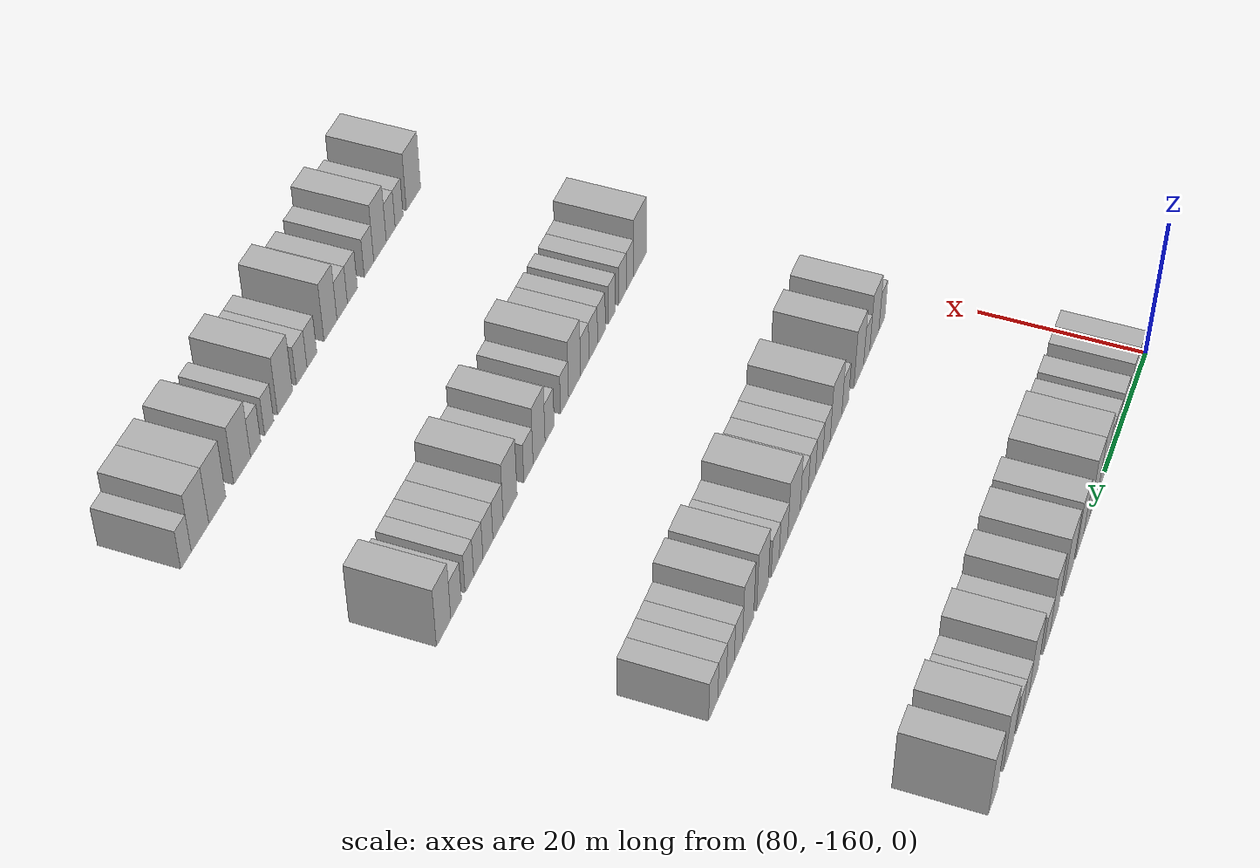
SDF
<sdf version="1.6">
 <world name="default">
  <model name="building_531">
   <static>1</static>
   <pose>85.0000 -155.9137 0 0.000000 0.000000 0.000000</pose>
   <link name="link">
    <pose>0 0 3.00 0 0 0</pose>
    <collision name="collision"><geometry><box><size>10.0000 2.8689 6.0000</size></box></geometry></collision>
    <visual name="visual">
     <cast_shadows>0</cast_shadows>
     <geometry><box><size>10.0000 2.8689 6.0000</size></box></geometry>
     <material>
      <script>
       <uri>model://HANNAS_wall/materials/scripts</uri>
       <uri>model://HANNAS_wall/materials/textures</uri>
       <name>vrc/HANNAS_wall</name>
      </script>
     </material>
    </visual>
   </link>
  </model>
  <model name="building_532">
   <static>1</static>
   <pose>85.0000 -153.0367 0 0.000000 0.000000 0.000000</pose>
   <link name="link">
    <pose>0 0 3.00 0 0 0</pose>
    <collision name="collision"><geometry><box><size>10.0000 2.8851 6.0000</size></box></geometry></collision>
    <visual name="visual">
     <cast_shadows>0</cast_shadows>
     <geometry><box><size>10.0000 2.8851 6.0000</size></box></geometry>
     <material>
      <script>
       <uri>model://HANNAS_wall/materials/scripts</uri>
       <uri>model://HANNAS_wall/materials/textures</uri>
       <name>vrc/HANNAS_wall</name>
      </script>
     </material>
    </visual>
   </link>
  </model>
  <model name="building_533">
   <static>1</static>
   <pose>85.0000 -148.1363 0 0.000000 0.000000 0.000000</pose>
   <link name="link">
    <pose>0 0 3.00 0 0 0</pose>
    <collision name="collision"><geometry><box><size>10.0000 2.9158 6.0000</size></box></geometry></collision>
    <visual name="visual">
     <cast_shadows>0</cast_shadows>
     <geometry><box><size>10.0000 2.9158 6.0000</size></box></geometry>
     <material>
      <script>
       <uri>model://HANNAS_wall/materials/scripts</uri>
       <uri>model://HANNAS_wall/materials/textures</uri>
       <name>vrc/HANNAS_wall</name>
      </script>
     </material>
    </visual>
   </link>
  </model>
  <model name="building_534">
   <static>1</static>
   <pose>85.0000 -144.2867 0 0.000000 0.000000 0.000000</pose>
   <link name="link">
    <pose>0 0 3.00 0 0 0</pose>
    <collision name="collision"><geometry><box><size>10.0000 2.7835 6.0000</size></box></geometry></collision>
    <visual name="visual">
     <cast_shadows>0</cast_shadows>
     <geometry><box><size>10.0000 2.7835 6.0000</size></box></geometry>
     <material>
      <script>
       <uri>model://HANNAS_wall/materials/scripts</uri>
       <uri>model://HANNAS_wall/materials/textures</uri>
       <name>vrc/HANNAS_wall</name>
      </script>
     </material>
    </visual>
   </link>
  </model>
  <model name="building_535">
   <static>1</static>
   <pose>85.0000 -141.6783 0 0.000000 0.000000 0.000000</pose>
   <link name="link">
    <pose>0 0 3.00 0 0 0</pose>
    <collision name="collision"><geometry><box><size>10.0000 2.4332 6.0000</size></box></geometry></collision>
    <visual name="visual">
     <cast_shadows>0</cast_shadows>
     <geometry><box><size>10.0000 2.4332 6.0000</size></box></geometry>
     <material>
      <script>
       <uri>model://HANNAS_wall/materials/scripts</uri>
       <uri>model://HANNAS_wall/materials/textures</uri>
       <name>vrc/HANNAS_wall</name>
      </script>
     </material>
    </visual>
   </link>
  </model>
  <model name="building_536">
   <static>1</static>
   <pose>85.0000 -138.5066 0 0.000000 0.000000 0.000000</pose>
   <link name="link">
    <pose>0 0 4.50 0 0 0</pose>
    <collision name="collision"><geometry><box><size>10.0000 3.9102 9.0000</size></box></geometry></collision>
    <visual name="visual">
     <cast_shadows>0</cast_shadows>
     <geometry><box><size>10.0000 3.9102 9.0000</size></box></geometry>
     <material>
      <script>
       <uri>model://HANNAS_wall/materials/scripts</uri>
       <uri>model://HANNAS_wall/materials/textures</uri>
       <name>vrc/HANNAS_wall</name>
      </script>
     </material>
    </visual>
   </link>
  </model>
  <model name="building_537">
   <static>1</static>
   <pose>85.0000 -134.6662 0 0.000000 0.000000 0.000000</pose>
   <link name="link">
    <pose>0 0 4.50 0 0 0</pose>
    <collision name="collision"><geometry><box><size>10.0000 3.7706 9.0000</size></box></geometry></collision>
    <visual name="visual">
     <cast_shadows>0</cast_shadows>
     <geometry><box><size>10.0000 3.7706 9.0000</size></box></geometry>
     <material>
      <script>
       <uri>model://HANNAS_wall/materials/scripts</uri>
       <uri>model://HANNAS_wall/materials/textures</uri>
       <name>vrc/HANNAS_wall</name>
      </script>
     </material>
    </visual>
   </link>
  </model>
  <model name="building_538">
   <static>1</static>
   <pose>85.0000 -131.3537 0 0.000000 0.000000 0.000000</pose>
   <link name="link">
    <pose>0 0 3.00 0 0 0</pose>
    <collision name="collision"><geometry><box><size>10.0000 2.8545 6.0000</size></box></geometry></collision>
    <visual name="visual">
     <cast_shadows>0</cast_shadows>
     <geometry><box><size>10.0000 2.8545 6.0000</size></box></geometry>
     <material>
      <script>
       <uri>model://HANNAS_wall/materials/scripts</uri>
       <uri>model://HANNAS_wall/materials/textures</uri>
       <name>vrc/HANNAS_wall</name>
      </script>
     </material>
    </visual>
   </link>
  </model>
  <model name="building_539">
   <static>1</static>
   <pose>85.0000 -128.1170 0 0.000000 0.000000 0.000000</pose>
   <link name="link">
    <pose>0 0 4.50 0 0 0</pose>
    <collision name="collision"><geometry><box><size>10.0000 3.6188 9.0000</size></box></geometry></collision>
    <visual name="visual">
     <cast_shadows>0</cast_shadows>
     <geometry><box><size>10.0000 3.6188 9.0000</size></box></geometry>
     <material>
      <script>
       <uri>model://HANNAS_wall/materials/scripts</uri>
       <uri>model://HANNAS_wall/materials/textures</uri>
       <name>vrc/HANNAS_wall</name>
      </script>
     </material>
    </visual>
   </link>
  </model>
  <model name="building_540">
   <static>1</static>
   <pose>85.0000 -123.0720 0 0.000000 0.000000 0.000000</pose>
   <link name="link">
    <pose>0 0 4.50 0 0 0</pose>
    <collision name="collision"><geometry><box><size>10.0000 4.4713 9.0000</size></box></geometry></collision>
    <visual name="visual">
     <cast_shadows>0</cast_shadows>
     <geometry><box><size>10.0000 4.4713 9.0000</size></box></geometry>
     <material>
      <script>
       <uri>model://HANNAS_wall/materials/scripts</uri>
       <uri>model://HANNAS_wall/materials/textures</uri>
       <name>vrc/HANNAS_wall</name>
      </script>
     </material>
    </visual>
   </link>
  </model>
  <model name="building_541">
   <static>1</static>
   <pose>85.0000 -116.9655 0 0.000000 0.000000 0.000000</pose>
   <link name="link">
    <pose>0 0 4.50 0 0 0</pose>
    <collision name="collision"><geometry><box><size>10.0000 3.7417 9.0000</size></box></geometry></collision>
    <visual name="visual">
     <cast_shadows>0</cast_shadows>
     <geometry><box><size>10.0000 3.7417 9.0000</size></box></geometry>
     <material>
      <script>
       <uri>model://HANNAS_wall/materials/scripts</uri>
       <uri>model://HANNAS_wall/materials/textures</uri>
       <name>vrc/HANNAS_wall</name>
      </script>
     </material>
    </visual>
   </link>
  </model>
  <model name="building_542">
   <static>1</static>
   <pose>85.0000 -113.6668 0 0.000000 0.000000 0.000000</pose>
   <link name="link">
    <pose>0 0 3.00 0 0 0</pose>
    <collision name="collision"><geometry><box><size>10.0000 2.8557 6.0000</size></box></geometry></collision>
    <visual name="visual">
     <cast_shadows>0</cast_shadows>
     <geometry><box><size>10.0000 2.8557 6.0000</size></box></geometry>
     <material>
      <script>
       <uri>model://HANNAS_wall/materials/scripts</uri>
       <uri>model://HANNAS_wall/materials/textures</uri>
       <name>vrc/HANNAS_wall</name>
      </script>
     </material>
    </visual>
   </link>
  </model>
  <model name="building_543">
   <static>1</static>
   <pose>85.0000 -108.2378 0 0.000000 0.000000 0.000000</pose>
   <link name="link">
    <pose>0 0 4.50 0 0 0</pose>
    <collision name="collision"><geometry><box><size>10.0000 4.0023 9.0000</size></box></geometry></collision>
    <visual name="visual">
     <cast_shadows>0</cast_shadows>
     <geometry><box><size>10.0000 4.0023 9.0000</size></box></geometry>
     <material>
      <script>
       <uri>model://HANNAS_wall/materials/scripts</uri>
       <uri>model://HANNAS_wall/materials/textures</uri>
       <name>vrc/HANNAS_wall</name>
      </script>
     </material>
    </visual>
   </link>
  </model>
  <model name="building_544">
   <static>1</static>
   <pose>85.0000 -104.9429 0 0.000000 0.000000 0.000000</pose>
   <link name="link">
    <pose>0 0 3.00 0 0 0</pose>
    <collision name="collision"><geometry><box><size>10.0000 2.5875 6.0000</size></box></geometry></collision>
    <visual name="visual">
     <cast_shadows>0</cast_shadows>
     <geometry><box><size>10.0000 2.5875 6.0000</size></box></geometry>
     <material>
      <script>
       <uri>model://HANNAS_wall/materials/scripts</uri>
       <uri>model://HANNAS_wall/materials/textures</uri>
       <name>vrc/HANNAS_wall</name>
      </script>
     </material>
    </visual>
   </link>
  </model>
  <model name="building_545">
   <static>1</static>
   <pose>85.0000 -102.4258 0 0.000000 0.000000 0.000000</pose>
   <link name="link">
    <pose>0 0 3.00 0 0 0</pose>
    <collision name="collision"><geometry><box><size>10.0000 2.4467 6.0000</size></box></geometry></collision>
    <visual name="visual">
     <cast_shadows>0</cast_shadows>
     <geometry><box><size>10.0000 2.4467 6.0000</size></box></geometry>
     <material>
      <script>
       <uri>model://HANNAS_wall/materials/scripts</uri>
       <uri>model://HANNAS_wall/materials/textures</uri>
       <name>vrc/HANNAS_wall</name>
      </script>
     </material>
    </visual>
   </link>
  </model>
  <model name="building_546">
   <static>1</static>
   <pose>85.0000 -98.1594 0 0.000000 0.000000 0.000000</pose>
   <link name="link">
    <pose>0 0 4.50 0 0 0</pose>
    <collision name="collision"><geometry><box><size>10.0000 4.0861 9.0000</size></box></geometry></collision>
    <visual name="visual">
     <cast_shadows>0</cast_shadows>
     <geometry><box><size>10.0000 4.0861 9.0000</size></box></geometry>
     <material>
      <script>
       <uri>model://HANNAS_wall/materials/scripts</uri>
       <uri>model://HANNAS_wall/materials/textures</uri>
       <name>vrc/HANNAS_wall</name>
      </script>
     </material>
    </visual>
   </link>
  </model>
  <model name="building_547">
   <static>1</static>
   <pose>85.0000 -92.2559 0 0.000000 0.000000 0.000000</pose>
   <link name="link">
    <pose>0 0 4.50 0 0 0</pose>
    <collision name="collision"><geometry><box><size>10.0000 3.7208 9.0000</size></box></geometry></collision>
    <visual name="visual">
     <cast_shadows>0</cast_shadows>
     <geometry><box><size>10.0000 3.7208 9.0000</size></box></geometry>
     <material>
      <script>
       <uri>model://HANNAS_wall/materials/scripts</uri>
       <uri>model://HANNAS_wall/materials/textures</uri>
       <name>vrc/HANNAS_wall</name>
      </script>
     </material>
    </visual>
   </link>
  </model>
  <model name="building_750">
   <static>1</static>
   <pose>115.0000 -154.0884 0 0.000000 0.000000 0.000000</pose>
   <link name="link">
    <pose>0 0 3.00 0 0 0</pose>
    <collision name="collision"><geometry><box><size>10.0000 2.4673 6.0000</size></box></geometry></collision>
    <visual name="visual">
     <cast_shadows>0</cast_shadows>
     <geometry><box><size>10.0000 2.4673 6.0000</size></box></geometry>
     <material>
      <script>
       <uri>model://HANNAS_wall/materials/scripts</uri>
       <uri>model://HANNAS_wall/materials/textures</uri>
       <name>vrc/HANNAS_wall</name>
      </script>
     </material>
    </visual>
   </link>
  </model>
  <model name="building_751">
   <static>1</static>
   <pose>115.0000 -151.0097 0 0.000000 0.000000 0.000000</pose>
   <link name="link">
    <pose>0 0 4.50 0 0 0</pose>
    <collision name="collision"><geometry><box><size>10.0000 3.6899 9.0000</size></box></geometry></collision>
    <visual name="visual">
     <cast_shadows>0</cast_shadows>
     <geometry><box><size>10.0000 3.6899 9.0000</size></box></geometry>
     <material>
      <script>
       <uri>model://HANNAS_wall/materials/scripts</uri>
       <uri>model://HANNAS_wall/materials/textures</uri>
       <name>vrc/HANNAS_wall</name>
      </script>
     </material>
    </visual>
   </link>
  </model>
  <model name="building_752">
   <static>1</static>
   <pose>115.0000 -147.9441 0 0.000000 0.000000 0.000000</pose>
   <link name="link">
    <pose>0 0 3.00 0 0 0</pose>
    <collision name="collision"><geometry><box><size>10.0000 2.4414 6.0000</size></box></geometry></collision>
    <visual name="visual">
     <cast_shadows>0</cast_shadows>
     <geometry><box><size>10.0000 2.4414 6.0000</size></box></geometry>
     <material>
      <script>
       <uri>model://HANNAS_wall/materials/scripts</uri>
       <uri>model://HANNAS_wall/materials/textures</uri>
       <name>vrc/HANNAS_wall</name>
      </script>
     </material>
    </visual>
   </link>
  </model>
  <model name="building_753">
   <static>1</static>
   <pose>115.0000 -144.8152 0 0.000000 0.000000 0.000000</pose>
   <link name="link">
    <pose>0 0 4.50 0 0 0</pose>
    <collision name="collision"><geometry><box><size>10.0000 3.8165 9.0000</size></box></geometry></collision>
    <visual name="visual">
     <cast_shadows>0</cast_shadows>
     <geometry><box><size>10.0000 3.8165 9.0000</size></box></geometry>
     <material>
      <script>
       <uri>model://HANNAS_wall/materials/scripts</uri>
       <uri>model://HANNAS_wall/materials/textures</uri>
       <name>vrc/HANNAS_wall</name>
      </script>
     </material>
    </visual>
   </link>
  </model>
  <model name="building_754">
   <static>1</static>
   <pose>115.0000 -139.5575 0 0.000000 0.000000 0.000000</pose>
   <link name="link">
    <pose>0 0 3.00 0 0 0</pose>
    <collision name="collision"><geometry><box><size>10.0000 2.6990 6.0000</size></box></geometry></collision>
    <visual name="visual">
     <cast_shadows>0</cast_shadows>
     <geometry><box><size>10.0000 2.6990 6.0000</size></box></geometry>
     <material>
      <script>
       <uri>model://HANNAS_wall/materials/scripts</uri>
       <uri>model://HANNAS_wall/materials/textures</uri>
       <name>vrc/HANNAS_wall</name>
      </script>
     </material>
    </visual>
   </link>
  </model>
  <model name="building_755">
   <static>1</static>
   <pose>115.0000 -135.9982 0 0.000000 0.000000 0.000000</pose>
   <link name="link">
    <pose>0 0 4.50 0 0 0</pose>
    <collision name="collision"><geometry><box><size>10.0000 4.4196 9.0000</size></box></geometry></collision>
    <visual name="visual">
     <cast_shadows>0</cast_shadows>
     <geometry><box><size>10.0000 4.4196 9.0000</size></box></geometry>
     <material>
      <script>
       <uri>model://HANNAS_wall/materials/scripts</uri>
       <uri>model://HANNAS_wall/materials/textures</uri>
       <name>vrc/HANNAS_wall</name>
      </script>
     </material>
    </visual>
   </link>
  </model>
  <model name="building_756">
   <static>1</static>
   <pose>115.0000 -132.4157 0 0.000000 0.000000 0.000000</pose>
   <link name="link">
    <pose>0 0 3.00 0 0 0</pose>
    <collision name="collision"><geometry><box><size>10.0000 2.7453 6.0000</size></box></geometry></collision>
    <visual name="visual">
     <cast_shadows>0</cast_shadows>
     <geometry><box><size>10.0000 2.7453 6.0000</size></box></geometry>
     <material>
      <script>
       <uri>model://HANNAS_wall/materials/scripts</uri>
       <uri>model://HANNAS_wall/materials/textures</uri>
       <name>vrc/HANNAS_wall</name>
      </script>
     </material>
    </visual>
   </link>
  </model>
  <model name="building_757">
   <static>1</static>
   <pose>115.0000 -129.6932 0 0.000000 0.000000 0.000000</pose>
   <link name="link">
    <pose>0 0 3.00 0 0 0</pose>
    <collision name="collision"><geometry><box><size>10.0000 2.6997 6.0000</size></box></geometry></collision>
    <visual name="visual">
     <cast_shadows>0</cast_shadows>
     <geometry><box><size>10.0000 2.6997 6.0000</size></box></geometry>
     <material>
      <script>
       <uri>model://HANNAS_wall/materials/scripts</uri>
       <uri>model://HANNAS_wall/materials/textures</uri>
       <name>vrc/HANNAS_wall</name>
      </script>
     </material>
    </visual>
   </link>
  </model>
  <model name="building_758">
   <static>1</static>
   <pose>115.0000 -127.0323 0 0.000000 0.000000 0.000000</pose>
   <link name="link">
    <pose>0 0 3.00 0 0 0</pose>
    <collision name="collision"><geometry><box><size>10.0000 2.6222 6.0000</size></box></geometry></collision>
    <visual name="visual">
     <cast_shadows>0</cast_shadows>
     <geometry><box><size>10.0000 2.6222 6.0000</size></box></geometry>
     <material>
      <script>
       <uri>model://HANNAS_wall/materials/scripts</uri>
       <uri>model://HANNAS_wall/materials/textures</uri>
       <name>vrc/HANNAS_wall</name>
      </script>
     </material>
    </visual>
   </link>
  </model>
  <model name="building_759">
   <static>1</static>
   <pose>115.0000 -124.2521 0 0.000000 0.000000 0.000000</pose>
   <link name="link">
    <pose>0 0 3.00 0 0 0</pose>
    <collision name="collision"><geometry><box><size>10.0000 2.9382 6.0000</size></box></geometry></collision>
    <visual name="visual">
     <cast_shadows>0</cast_shadows>
     <geometry><box><size>10.0000 2.9382 6.0000</size></box></geometry>
     <material>
      <script>
       <uri>model://HANNAS_wall/materials/scripts</uri>
       <uri>model://HANNAS_wall/materials/textures</uri>
       <name>vrc/HANNAS_wall</name>
      </script>
     </material>
    </visual>
   </link>
  </model>
  <model name="building_760">
   <static>1</static>
   <pose>115.0000 -120.5601 0 0.000000 0.000000 0.000000</pose>
   <link name="link">
    <pose>0 0 4.50 0 0 0</pose>
    <collision name="collision"><geometry><box><size>10.0000 4.4458 9.0000</size></box></geometry></collision>
    <visual name="visual">
     <cast_shadows>0</cast_shadows>
     <geometry><box><size>10.0000 4.4458 9.0000</size></box></geometry>
     <material>
      <script>
       <uri>model://HANNAS_wall/materials/scripts</uri>
       <uri>model://HANNAS_wall/materials/textures</uri>
       <name>vrc/HANNAS_wall</name>
      </script>
     </material>
    </visual>
   </link>
  </model>
  <model name="building_761">
   <static>1</static>
   <pose>115.0000 -116.8474 0 0.000000 0.000000 0.000000</pose>
   <link name="link">
    <pose>0 0 3.00 0 0 0</pose>
    <collision name="collision"><geometry><box><size>10.0000 2.9796 6.0000</size></box></geometry></collision>
    <visual name="visual">
     <cast_shadows>0</cast_shadows>
     <geometry><box><size>10.0000 2.9796 6.0000</size></box></geometry>
     <material>
      <script>
       <uri>model://HANNAS_wall/materials/scripts</uri>
       <uri>model://HANNAS_wall/materials/textures</uri>
       <name>vrc/HANNAS_wall</name>
      </script>
     </material>
    </visual>
   </link>
  </model>
  <model name="building_762">
   <static>1</static>
   <pose>115.0000 -113.9716 0 0.000000 0.000000 0.000000</pose>
   <link name="link">
    <pose>0 0 3.00 0 0 0</pose>
    <collision name="collision"><geometry><box><size>10.0000 2.7719 6.0000</size></box></geometry></collision>
    <visual name="visual">
     <cast_shadows>0</cast_shadows>
     <geometry><box><size>10.0000 2.7719 6.0000</size></box></geometry>
     <material>
      <script>
       <uri>model://HANNAS_wall/materials/scripts</uri>
       <uri>model://HANNAS_wall/materials/textures</uri>
       <name>vrc/HANNAS_wall</name>
      </script>
     </material>
    </visual>
   </link>
  </model>
  <model name="building_763">
   <static>1</static>
   <pose>115.0000 -109.6281 0 0.000000 0.000000 0.000000</pose>
   <link name="link">
    <pose>0 0 4.50 0 0 0</pose>
    <collision name="collision"><geometry><box><size>10.0000 3.9152 9.0000</size></box></geometry></collision>
    <visual name="visual">
     <cast_shadows>0</cast_shadows>
     <geometry><box><size>10.0000 3.9152 9.0000</size></box></geometry>
     <material>
      <script>
       <uri>model://HANNAS_wall/materials/scripts</uri>
       <uri>model://HANNAS_wall/materials/textures</uri>
       <name>vrc/HANNAS_wall</name>
      </script>
     </material>
    </visual>
   </link>
  </model>
  <model name="building_764">
   <static>1</static>
   <pose>115.0000 -104.8191 0 0.000000 0.000000 0.000000</pose>
   <link name="link">
    <pose>0 0 4.50 0 0 0</pose>
    <collision name="collision"><geometry><box><size>10.0000 3.7028 9.0000</size></box></geometry></collision>
    <visual name="visual">
     <cast_shadows>0</cast_shadows>
     <geometry><box><size>10.0000 3.7028 9.0000</size></box></geometry>
     <material>
      <script>
       <uri>model://HANNAS_wall/materials/scripts</uri>
       <uri>model://HANNAS_wall/materials/textures</uri>
       <name>vrc/HANNAS_wall</name>
      </script>
     </material>
    </visual>
   </link>
  </model>
  <model name="building_765">
   <static>1</static>
   <pose>115.0000 -101.6167 0 0.000000 0.000000 0.000000</pose>
   <link name="link">
    <pose>0 0 3.00 0 0 0</pose>
    <collision name="collision"><geometry><box><size>10.0000 2.7020 6.0000</size></box></geometry></collision>
    <visual name="visual">
     <cast_shadows>0</cast_shadows>
     <geometry><box><size>10.0000 2.7020 6.0000</size></box></geometry>
     <material>
      <script>
       <uri>model://HANNAS_wall/materials/scripts</uri>
       <uri>model://HANNAS_wall/materials/textures</uri>
       <name>vrc/HANNAS_wall</name>
      </script>
     </material>
    </visual>
   </link>
  </model>
  <model name="building_766">
   <static>1</static>
   <pose>115.0000 -98.9996 0 0.000000 0.000000 0.000000</pose>
   <link name="link">
    <pose>0 0 3.00 0 0 0</pose>
    <collision name="collision"><geometry><box><size>10.0000 2.5321 6.0000</size></box></geometry></collision>
    <visual name="visual">
     <cast_shadows>0</cast_shadows>
     <geometry><box><size>10.0000 2.5321 6.0000</size></box></geometry>
     <material>
      <script>
       <uri>model://HANNAS_wall/materials/scripts</uri>
       <uri>model://HANNAS_wall/materials/textures</uri>
       <name>vrc/HANNAS_wall</name>
      </script>
     </material>
    </visual>
   </link>
  </model>
  <model name="building_767">
   <static>1</static>
   <pose>115.0000 -96.3566 0 0.000000 0.000000 0.000000</pose>
   <link name="link">
    <pose>0 0 3.00 0 0 0</pose>
    <collision name="collision"><geometry><box><size>10.0000 2.7540 6.0000</size></box></geometry></collision>
    <visual name="visual">
     <cast_shadows>0</cast_shadows>
     <geometry><box><size>10.0000 2.7540 6.0000</size></box></geometry>
     <material>
      <script>
       <uri>model://HANNAS_wall/materials/scripts</uri>
       <uri>model://HANNAS_wall/materials/textures</uri>
       <name>vrc/HANNAS_wall</name>
      </script>
     </material>
    </visual>
   </link>
  </model>
  <model name="building_768">
   <static>1</static>
   <pose>115.0000 -93.5130 0 0.000000 0.000000 0.000000</pose>
   <link name="link">
    <pose>0 0 3.00 0 0 0</pose>
    <collision name="collision"><geometry><box><size>10.0000 2.9333 6.0000</size></box></geometry></collision>
    <visual name="visual">
     <cast_shadows>0</cast_shadows>
     <geometry><box><size>10.0000 2.9333 6.0000</size></box></geometry>
     <material>
      <script>
       <uri>model://HANNAS_wall/materials/scripts</uri>
       <uri>model://HANNAS_wall/materials/textures</uri>
       <name>vrc/HANNAS_wall</name>
      </script>
     </material>
    </visual>
   </link>
  </model>
  <model name="building_984">
   <static>1</static>
   <pose>145.0000 -154.0202 0 0.000000 0.000000 0.000000</pose>
   <link name="link">
    <pose>0 0 4.50 0 0 0</pose>
    <collision name="collision"><geometry><box><size>10.0000 4.4414 9.0000</size></box></geometry></collision>
    <visual name="visual">
     <cast_shadows>0</cast_shadows>
     <geometry><box><size>10.0000 4.4414 9.0000</size></box></geometry>
     <material>
      <script>
       <uri>model://HANNAS_wall/materials/scripts</uri>
       <uri>model://HANNAS_wall/materials/textures</uri>
       <name>vrc/HANNAS_wall</name>
      </script>
     </material>
    </visual>
   </link>
  </model>
  <model name="building_985">
   <static>1</static>
   <pose>145.0000 -150.5367 0 0.000000 0.000000 0.000000</pose>
   <link name="link">
    <pose>0 0 3.00 0 0 0</pose>
    <collision name="collision"><geometry><box><size>10.0000 2.5255 6.0000</size></box></geometry></collision>
    <visual name="visual">
     <cast_shadows>0</cast_shadows>
     <geometry><box><size>10.0000 2.5255 6.0000</size></box></geometry>
     <material>
      <script>
       <uri>model://HANNAS_wall/materials/scripts</uri>
       <uri>model://HANNAS_wall/materials/textures</uri>
       <name>vrc/HANNAS_wall</name>
      </script>
     </material>
    </visual>
   </link>
  </model>
  <model name="building_986">
   <static>1</static>
   <pose>145.0000 -147.9584 0 0.000000 0.000000 0.000000</pose>
   <link name="link">
    <pose>0 0 3.00 0 0 0</pose>
    <collision name="collision"><geometry><box><size>10.0000 2.6311 6.0000</size></box></geometry></collision>
    <visual name="visual">
     <cast_shadows>0</cast_shadows>
     <geometry><box><size>10.0000 2.6311 6.0000</size></box></geometry>
     <material>
      <script>
       <uri>model://HANNAS_wall/materials/scripts</uri>
       <uri>model://HANNAS_wall/materials/textures</uri>
       <name>vrc/HANNAS_wall</name>
      </script>
     </material>
    </visual>
   </link>
  </model>
  <model name="building_987">
   <static>1</static>
   <pose>145.0000 -144.4364 0 0.000000 0.000000 0.000000</pose>
   <link name="link">
    <pose>0 0 3.00 0 0 0</pose>
    <collision name="collision"><geometry><box><size>10.0000 2.4128 6.0000</size></box></geometry></collision>
    <visual name="visual">
     <cast_shadows>0</cast_shadows>
     <geometry><box><size>10.0000 2.4128 6.0000</size></box></geometry>
     <material>
      <script>
       <uri>model://HANNAS_wall/materials/scripts</uri>
       <uri>model://HANNAS_wall/materials/textures</uri>
       <name>vrc/HANNAS_wall</name>
      </script>
     </material>
    </visual>
   </link>
  </model>
  <model name="building_988">
   <static>1</static>
   <pose>145.0000 -140.9374 0 0.000000 0.000000 0.000000</pose>
   <link name="link">
    <pose>0 0 3.00 0 0 0</pose>
    <collision name="collision"><geometry><box><size>10.0000 2.5854 6.0000</size></box></geometry></collision>
    <visual name="visual">
     <cast_shadows>0</cast_shadows>
     <geometry><box><size>10.0000 2.5854 6.0000</size></box></geometry>
     <material>
      <script>
       <uri>model://HANNAS_wall/materials/scripts</uri>
       <uri>model://HANNAS_wall/materials/textures</uri>
       <name>vrc/HANNAS_wall</name>
      </script>
     </material>
    </visual>
   </link>
  </model>
  <model name="building_989">
   <static>1</static>
   <pose>145.0000 -138.2459 0 0.000000 0.000000 0.000000</pose>
   <link name="link">
    <pose>0 0 3.00 0 0 0</pose>
    <collision name="collision"><geometry><box><size>10.0000 2.7976 6.0000</size></box></geometry></collision>
    <visual name="visual">
     <cast_shadows>0</cast_shadows>
     <geometry><box><size>10.0000 2.7976 6.0000</size></box></geometry>
     <material>
      <script>
       <uri>model://HANNAS_wall/materials/scripts</uri>
       <uri>model://HANNAS_wall/materials/textures</uri>
       <name>vrc/HANNAS_wall</name>
      </script>
     </material>
    </visual>
   </link>
  </model>
  <model name="building_990">
   <static>1</static>
   <pose>145.0000 -135.4768 0 0.000000 0.000000 0.000000</pose>
   <link name="link">
    <pose>0 0 3.00 0 0 0</pose>
    <collision name="collision"><geometry><box><size>10.0000 2.7407 6.0000</size></box></geometry></collision>
    <visual name="visual">
     <cast_shadows>0</cast_shadows>
     <geometry><box><size>10.0000 2.7407 6.0000</size></box></geometry>
     <material>
      <script>
       <uri>model://HANNAS_wall/materials/scripts</uri>
       <uri>model://HANNAS_wall/materials/textures</uri>
       <name>vrc/HANNAS_wall</name>
      </script>
     </material>
    </visual>
   </link>
  </model>
  <model name="building_991">
   <static>1</static>
   <pose>145.0000 -132.1802 0 0.000000 0.000000 0.000000</pose>
   <link name="link">
    <pose>0 0 4.50 0 0 0</pose>
    <collision name="collision"><geometry><box><size>10.0000 3.8525 9.0000</size></box></geometry></collision>
    <visual name="visual">
     <cast_shadows>0</cast_shadows>
     <geometry><box><size>10.0000 3.8525 9.0000</size></box></geometry>
     <material>
      <script>
       <uri>model://HANNAS_wall/materials/scripts</uri>
       <uri>model://HANNAS_wall/materials/textures</uri>
       <name>vrc/HANNAS_wall</name>
      </script>
     </material>
    </visual>
   </link>
  </model>
  <model name="building_992">
   <static>1</static>
   <pose>145.0000 -128.9975 0 0.000000 0.000000 0.000000</pose>
   <link name="link">
    <pose>0 0 3.00 0 0 0</pose>
    <collision name="collision"><geometry><box><size>10.0000 2.5129 6.0000</size></box></geometry></collision>
    <visual name="visual">
     <cast_shadows>0</cast_shadows>
     <geometry><box><size>10.0000 2.5129 6.0000</size></box></geometry>
     <material>
      <script>
       <uri>model://HANNAS_wall/materials/scripts</uri>
       <uri>model://HANNAS_wall/materials/textures</uri>
       <name>vrc/HANNAS_wall</name>
      </script>
     </material>
    </visual>
   </link>
  </model>
  <model name="building_993">
   <static>1</static>
   <pose>145.0000 -124.3331 0 0.000000 0.000000 0.000000</pose>
   <link name="link">
    <pose>0 0 3.00 0 0 0</pose>
    <collision name="collision"><geometry><box><size>10.0000 2.8158 6.0000</size></box></geometry></collision>
    <visual name="visual">
     <cast_shadows>0</cast_shadows>
     <geometry><box><size>10.0000 2.8158 6.0000</size></box></geometry>
     <material>
      <script>
       <uri>model://HANNAS_wall/materials/scripts</uri>
       <uri>model://HANNAS_wall/materials/textures</uri>
       <name>vrc/HANNAS_wall</name>
      </script>
     </material>
    </visual>
   </link>
  </model>
  <model name="building_994">
   <static>1</static>
   <pose>145.0000 -121.1004 0 0.000000 0.000000 0.000000</pose>
   <link name="link">
    <pose>0 0 4.50 0 0 0</pose>
    <collision name="collision"><geometry><box><size>10.0000 3.6497 9.0000</size></box></geometry></collision>
    <visual name="visual">
     <cast_shadows>0</cast_shadows>
     <geometry><box><size>10.0000 3.6497 9.0000</size></box></geometry>
     <material>
      <script>
       <uri>model://HANNAS_wall/materials/scripts</uri>
       <uri>model://HANNAS_wall/materials/textures</uri>
       <name>vrc/HANNAS_wall</name>
      </script>
     </material>
    </visual>
   </link>
  </model>
  <model name="building_995">
   <static>1</static>
   <pose>145.0000 -117.8674 0 0.000000 0.000000 0.000000</pose>
   <link name="link">
    <pose>0 0 3.00 0 0 0</pose>
    <collision name="collision"><geometry><box><size>10.0000 2.8161 6.0000</size></box></geometry></collision>
    <visual name="visual">
     <cast_shadows>0</cast_shadows>
     <geometry><box><size>10.0000 2.8161 6.0000</size></box></geometry>
     <material>
      <script>
       <uri>model://HANNAS_wall/materials/scripts</uri>
       <uri>model://HANNAS_wall/materials/textures</uri>
       <name>vrc/HANNAS_wall</name>
      </script>
     </material>
    </visual>
   </link>
  </model>
  <model name="building_996">
   <static>1</static>
   <pose>145.0000 -112.4150 0 0.000000 0.000000 0.000000</pose>
   <link name="link">
    <pose>0 0 4.50 0 0 0</pose>
    <collision name="collision"><geometry><box><size>10.0000 4.0887 9.0000</size></box></geometry></collision>
    <visual name="visual">
     <cast_shadows>0</cast_shadows>
     <geometry><box><size>10.0000 4.0887 9.0000</size></box></geometry>
     <material>
      <script>
       <uri>model://HANNAS_wall/materials/scripts</uri>
       <uri>model://HANNAS_wall/materials/textures</uri>
       <name>vrc/HANNAS_wall</name>
      </script>
     </material>
    </visual>
   </link>
  </model>
  <model name="building_997">
   <static>1</static>
   <pose>145.0000 -108.8798 0 0.000000 0.000000 0.000000</pose>
   <link name="link">
    <pose>0 0 3.00 0 0 0</pose>
    <collision name="collision"><geometry><box><size>10.0000 2.9818 6.0000</size></box></geometry></collision>
    <visual name="visual">
     <cast_shadows>0</cast_shadows>
     <geometry><box><size>10.0000 2.9818 6.0000</size></box></geometry>
     <material>
      <script>
       <uri>model://HANNAS_wall/materials/scripts</uri>
       <uri>model://HANNAS_wall/materials/textures</uri>
       <name>vrc/HANNAS_wall</name>
      </script>
     </material>
    </visual>
   </link>
  </model>
  <model name="building_998">
   <static>1</static>
   <pose>145.0000 -105.9477 0 0.000000 0.000000 0.000000</pose>
   <link name="link">
    <pose>0 0 3.00 0 0 0</pose>
    <collision name="collision"><geometry><box><size>10.0000 2.8824 6.0000</size></box></geometry></collision>
    <visual name="visual">
     <cast_shadows>0</cast_shadows>
     <geometry><box><size>10.0000 2.8824 6.0000</size></box></geometry>
     <material>
      <script>
       <uri>model://HANNAS_wall/materials/scripts</uri>
       <uri>model://HANNAS_wall/materials/textures</uri>
       <name>vrc/HANNAS_wall</name>
      </script>
     </material>
    </visual>
   </link>
  </model>
  <model name="building_999">
   <static>1</static>
   <pose>145.0000 -103.1942 0 0.000000 0.000000 0.000000</pose>
   <link name="link">
    <pose>0 0 3.00 0 0 0</pose>
    <collision name="collision"><geometry><box><size>10.0000 2.6247 6.0000</size></box></geometry></collision>
    <visual name="visual">
     <cast_shadows>0</cast_shadows>
     <geometry><box><size>10.0000 2.6247 6.0000</size></box></geometry>
     <material>
      <script>
       <uri>model://HANNAS_wall/materials/scripts</uri>
       <uri>model://HANNAS_wall/materials/textures</uri>
       <name>vrc/HANNAS_wall</name>
      </script>
     </material>
    </visual>
   </link>
  </model>
  <model name="building_1000">
   <static>1</static>
   <pose>145.0000 -100.6671 0 0.000000 0.000000 0.000000</pose>
   <link name="link">
    <pose>0 0 3.00 0 0 0</pose>
    <collision name="collision"><geometry><box><size>10.0000 2.4294 6.0000</size></box></geometry></collision>
    <visual name="visual">
     <cast_shadows>0</cast_shadows>
     <geometry><box><size>10.0000 2.4294 6.0000</size></box></geometry>
     <material>
      <script>
       <uri>model://HANNAS_wall/materials/scripts</uri>
       <uri>model://HANNAS_wall/materials/textures</uri>
       <name>vrc/HANNAS_wall</name>
      </script>
     </material>
    </visual>
   </link>
  </model>
  <model name="building_1001">
   <static>1</static>
   <pose>145.0000 -96.9841 0 0.000000 0.000000 0.000000</pose>
   <link name="link">
    <pose>0 0 3.00 0 0 0</pose>
    <collision name="collision"><geometry><box><size>10.0000 2.9367 6.0000</size></box></geometry></collision>
    <visual name="visual">
     <cast_shadows>0</cast_shadows>
     <geometry><box><size>10.0000 2.9367 6.0000</size></box></geometry>
     <material>
      <script>
       <uri>model://HANNAS_wall/materials/scripts</uri>
       <uri>model://HANNAS_wall/materials/textures</uri>
       <name>vrc/HANNAS_wall</name>
      </script>
     </material>
    </visual>
   </link>
  </model>
  <model name="building_1002">
   <static>1</static>
   <pose>145.0000 -93.5504 0 0.000000 0.000000 0.000000</pose>
   <link name="link">
    <pose>0 0 4.50 0 0 0</pose>
    <collision name="collision"><geometry><box><size>10.0000 3.9305 9.0000</size></box></geometry></collision>
    <visual name="visual">
     <cast_shadows>0</cast_shadows>
     <geometry><box><size>10.0000 3.9305 9.0000</size></box></geometry>
     <material>
      <script>
       <uri>model://HANNAS_wall/materials/scripts</uri>
       <uri>model://HANNAS_wall/materials/textures</uri>
       <name>vrc/HANNAS_wall</name>
      </script>
     </material>
    </visual>
   </link>
  </model>
  <model name="building_1218">
   <static>1</static>
   <pose>175.0000 -155.6262 0 0.000000 0.000000 0.000000</pose>
   <link name="link">
    <pose>0 0 4.50 0 0 0</pose>
    <collision name="collision"><geometry><box><size>10.0000 4.4111 9.0000</size></box></geometry></collision>
    <visual name="visual">
     <cast_shadows>0</cast_shadows>
     <geometry><box><size>10.0000 4.4111 9.0000</size></box></geometry>
     <material>
      <script>
       <uri>model://HANNAS_wall/materials/scripts</uri>
       <uri>model://HANNAS_wall/materials/textures</uri>
       <name>vrc/HANNAS_wall</name>
      </script>
     </material>
    </visual>
   </link>
  </model>
  <model name="building_1219">
   <static>1</static>
   <pose>175.0000 -151.2184 0 0.000000 0.000000 0.000000</pose>
   <link name="link">
    <pose>0 0 3.00 0 0 0</pose>
    <collision name="collision"><geometry><box><size>10.0000 2.4045 6.0000</size></box></geometry></collision>
    <visual name="visual">
     <cast_shadows>0</cast_shadows>
     <geometry><box><size>10.0000 2.4045 6.0000</size></box></geometry>
     <material>
      <script>
       <uri>model://HANNAS_wall/materials/scripts</uri>
       <uri>model://HANNAS_wall/materials/textures</uri>
       <name>vrc/HANNAS_wall</name>
      </script>
     </material>
    </visual>
   </link>
  </model>
  <model name="building_1220">
   <static>1</static>
   <pose>175.0000 -148.6824 0 0.000000 0.000000 0.000000</pose>
   <link name="link">
    <pose>0 0 3.00 0 0 0</pose>
    <collision name="collision"><geometry><box><size>10.0000 2.6673 6.0000</size></box></geometry></collision>
    <visual name="visual">
     <cast_shadows>0</cast_shadows>
     <geometry><box><size>10.0000 2.6673 6.0000</size></box></geometry>
     <material>
      <script>
       <uri>model://HANNAS_wall/materials/scripts</uri>
       <uri>model://HANNAS_wall/materials/textures</uri>
       <name>vrc/HANNAS_wall</name>
      </script>
     </material>
    </visual>
   </link>
  </model>
  <model name="building_1221">
   <static>1</static>
   <pose>175.0000 -145.4774 0 0.000000 0.000000 0.000000</pose>
   <link name="link">
    <pose>0 0 4.50 0 0 0</pose>
    <collision name="collision"><geometry><box><size>10.0000 3.7427 9.0000</size></box></geometry></collision>
    <visual name="visual">
     <cast_shadows>0</cast_shadows>
     <geometry><box><size>10.0000 3.7427 9.0000</size></box></geometry>
     <material>
      <script>
       <uri>model://HANNAS_wall/materials/scripts</uri>
       <uri>model://HANNAS_wall/materials/textures</uri>
       <name>vrc/HANNAS_wall</name>
      </script>
     </material>
    </visual>
   </link>
  </model>
  <model name="building_1222">
   <static>1</static>
   <pose>175.0000 -142.2078 0 0.000000 0.000000 0.000000</pose>
   <link name="link">
    <pose>0 0 3.00 0 0 0</pose>
    <collision name="collision"><geometry><box><size>10.0000 2.7964 6.0000</size></box></geometry></collision>
    <visual name="visual">
     <cast_shadows>0</cast_shadows>
     <geometry><box><size>10.0000 2.7964 6.0000</size></box></geometry>
     <material>
      <script>
       <uri>model://HANNAS_wall/materials/scripts</uri>
       <uri>model://HANNAS_wall/materials/textures</uri>
       <name>vrc/HANNAS_wall</name>
      </script>
     </material>
    </visual>
   </link>
  </model>
  <model name="building_1223">
   <static>1</static>
   <pose>175.0000 -137.3651 0 0.000000 0.000000 0.000000</pose>
   <link name="link">
    <pose>0 0 3.00 0 0 0</pose>
    <collision name="collision"><geometry><box><size>10.0000 2.8892 6.0000</size></box></geometry></collision>
    <visual name="visual">
     <cast_shadows>0</cast_shadows>
     <geometry><box><size>10.0000 2.8892 6.0000</size></box></geometry>
     <material>
      <script>
       <uri>model://HANNAS_wall/materials/scripts</uri>
       <uri>model://HANNAS_wall/materials/textures</uri>
       <name>vrc/HANNAS_wall</name>
      </script>
     </material>
    </visual>
   </link>
  </model>
  <model name="building_1224">
   <static>1</static>
   <pose>175.0000 -134.4359 0 0.000000 0.000000 0.000000</pose>
   <link name="link">
    <pose>0 0 3.00 0 0 0</pose>
    <collision name="collision"><geometry><box><size>10.0000 2.9690 6.0000</size></box></geometry></collision>
    <visual name="visual">
     <cast_shadows>0</cast_shadows>
     <geometry><box><size>10.0000 2.9690 6.0000</size></box></geometry>
     <material>
      <script>
       <uri>model://HANNAS_wall/materials/scripts</uri>
       <uri>model://HANNAS_wall/materials/textures</uri>
       <name>vrc/HANNAS_wall</name>
      </script>
     </material>
    </visual>
   </link>
  </model>
  <model name="building_1225">
   <static>1</static>
   <pose>175.0000 -131.1065 0 0.000000 0.000000 0.000000</pose>
   <link name="link">
    <pose>0 0 4.50 0 0 0</pose>
    <collision name="collision"><geometry><box><size>10.0000 3.6900 9.0000</size></box></geometry></collision>
    <visual name="visual">
     <cast_shadows>0</cast_shadows>
     <geometry><box><size>10.0000 3.6900 9.0000</size></box></geometry>
     <material>
      <script>
       <uri>model://HANNAS_wall/materials/scripts</uri>
       <uri>model://HANNAS_wall/materials/textures</uri>
       <name>vrc/HANNAS_wall</name>
      </script>
     </material>
    </visual>
   </link>
  </model>
  <model name="building_1226">
   <static>1</static>
   <pose>175.0000 -125.9197 0 0.000000 0.000000 0.000000</pose>
   <link name="link">
    <pose>0 0 3.00 0 0 0</pose>
    <collision name="collision"><geometry><box><size>10.0000 2.6835 6.0000</size></box></geometry></collision>
    <visual name="visual">
     <cast_shadows>0</cast_shadows>
     <geometry><box><size>10.0000 2.6835 6.0000</size></box></geometry>
     <material>
      <script>
       <uri>model://HANNAS_wall/materials/scripts</uri>
       <uri>model://HANNAS_wall/materials/textures</uri>
       <name>vrc/HANNAS_wall</name>
      </script>
     </material>
    </visual>
   </link>
  </model>
  <model name="building_1227">
   <static>1</static>
   <pose>175.0000 -123.1122 0 0.000000 0.000000 0.000000</pose>
   <link name="link">
    <pose>0 0 3.00 0 0 0</pose>
    <collision name="collision"><geometry><box><size>10.0000 2.9316 6.0000</size></box></geometry></collision>
    <visual name="visual">
     <cast_shadows>0</cast_shadows>
     <geometry><box><size>10.0000 2.9316 6.0000</size></box></geometry>
     <material>
      <script>
       <uri>model://HANNAS_wall/materials/scripts</uri>
       <uri>model://HANNAS_wall/materials/textures</uri>
       <name>vrc/HANNAS_wall</name>
      </script>
     </material>
    </visual>
   </link>
  </model>
  <model name="building_1228">
   <static>1</static>
   <pose>175.0000 -118.6302 0 0.000000 0.000000 0.000000</pose>
   <link name="link">
    <pose>0 0 4.50 0 0 0</pose>
    <collision name="collision"><geometry><box><size>10.0000 4.0324 9.0000</size></box></geometry></collision>
    <visual name="visual">
     <cast_shadows>0</cast_shadows>
     <geometry><box><size>10.0000 4.0324 9.0000</size></box></geometry>
     <material>
      <script>
       <uri>model://HANNAS_wall/materials/scripts</uri>
       <uri>model://HANNAS_wall/materials/textures</uri>
       <name>vrc/HANNAS_wall</name>
      </script>
     </material>
    </visual>
   </link>
  </model>
  <model name="building_1229">
   <static>1</static>
   <pose>175.0000 -114.4026 0 0.000000 0.000000 0.000000</pose>
   <link name="link">
    <pose>0 0 3.00 0 0 0</pose>
    <collision name="collision"><geometry><box><size>10.0000 2.4230 6.0000</size></box></geometry></collision>
    <visual name="visual">
     <cast_shadows>0</cast_shadows>
     <geometry><box><size>10.0000 2.4230 6.0000</size></box></geometry>
     <material>
      <script>
       <uri>model://HANNAS_wall/materials/scripts</uri>
       <uri>model://HANNAS_wall/materials/textures</uri>
       <name>vrc/HANNAS_wall</name>
      </script>
     </material>
    </visual>
   </link>
  </model>
  <model name="building_1230">
   <static>1</static>
   <pose>175.0000 -110.8696 0 0.000000 0.000000 0.000000</pose>
   <link name="link">
    <pose>0 0 3.00 0 0 0</pose>
    <collision name="collision"><geometry><box><size>10.0000 2.6431 6.0000</size></box></geometry></collision>
    <visual name="visual">
     <cast_shadows>0</cast_shadows>
     <geometry><box><size>10.0000 2.6431 6.0000</size></box></geometry>
     <material>
      <script>
       <uri>model://HANNAS_wall/materials/scripts</uri>
       <uri>model://HANNAS_wall/materials/textures</uri>
       <name>vrc/HANNAS_wall</name>
      </script>
     </material>
    </visual>
   </link>
  </model>
  <model name="building_1231">
   <static>1</static>
   <pose>175.0000 -107.3931 0 0.000000 0.000000 0.000000</pose>
   <link name="link">
    <pose>0 0 4.50 0 0 0</pose>
    <collision name="collision"><geometry><box><size>10.0000 4.3098 9.0000</size></box></geometry></collision>
    <visual name="visual">
     <cast_shadows>0</cast_shadows>
     <geometry><box><size>10.0000 4.3098 9.0000</size></box></geometry>
     <material>
      <script>
       <uri>model://HANNAS_wall/materials/scripts</uri>
       <uri>model://HANNAS_wall/materials/textures</uri>
       <name>vrc/HANNAS_wall</name>
      </script>
     </material>
    </visual>
   </link>
  </model>
  <model name="building_1232">
   <static>1</static>
   <pose>175.0000 -101.1144 0 0.000000 0.000000 0.000000</pose>
   <link name="link">
    <pose>0 0 4.50 0 0 0</pose>
    <collision name="collision"><geometry><box><size>10.0000 4.2477 9.0000</size></box></geometry></collision>
    <visual name="visual">
     <cast_shadows>0</cast_shadows>
     <geometry><box><size>10.0000 4.2477 9.0000</size></box></geometry>
     <material>
      <script>
       <uri>model://HANNAS_wall/materials/scripts</uri>
       <uri>model://HANNAS_wall/materials/textures</uri>
       <name>vrc/HANNAS_wall</name>
      </script>
     </material>
    </visual>
   </link>
  </model>
  <model name="building_1233">
   <static>1</static>
   <pose>175.0000 -96.8373 0 0.000000 0.000000 0.000000</pose>
   <link name="link">
    <pose>0 0 4.50 0 0 0</pose>
    <collision name="collision"><geometry><box><size>10.0000 4.3063 9.0000</size></box></geometry></collision>
    <visual name="visual">
     <cast_shadows>0</cast_shadows>
     <geometry><box><size>10.0000 4.3063 9.0000</size></box></geometry>
     <material>
      <script>
       <uri>model://HANNAS_wall/materials/scripts</uri>
       <uri>model://HANNAS_wall/materials/textures</uri>
       <name>vrc/HANNAS_wall</name>
      </script>
     </material>
    </visual>
   </link>
  </model>
  <model name="building_1234">
   <static>1</static>
   <pose>175.0000 -93.3998 0 0.000000 0.000000 0.000000</pose>
   <link name="link">
    <pose>0 0 3.00 0 0 0</pose>
    <collision name="collision"><geometry><box><size>10.0000 2.5687 6.0000</size></box></geometry></collision>
    <visual name="visual">
     <cast_shadows>0</cast_shadows>
     <geometry><box><size>10.0000 2.5687 6.0000</size></box></geometry>
     <material>
      <script>
       <uri>model://HANNAS_wall/materials/scripts</uri>
       <uri>model://HANNAS_wall/materials/textures</uri>
       <name>vrc/HANNAS_wall</name>
      </script>
     </material>
    </visual>
   </link>
  </model>
 </world>
</sdf>
